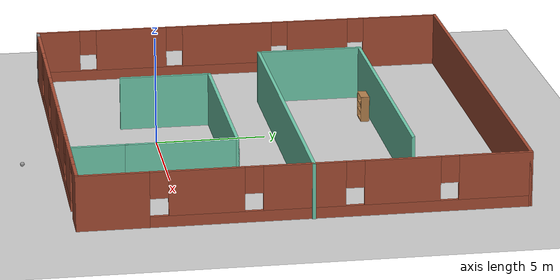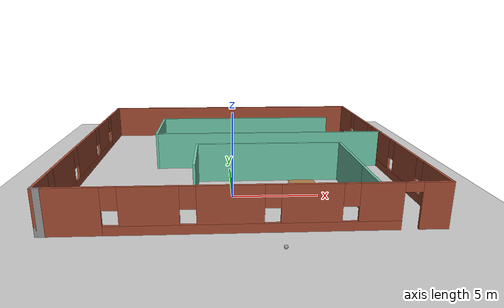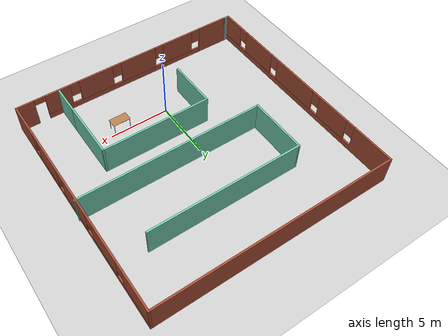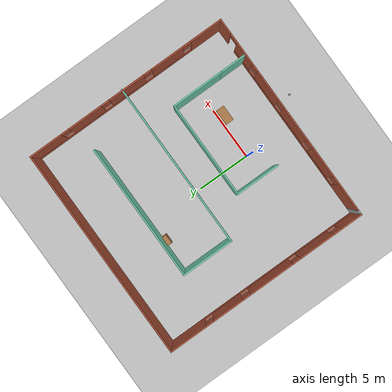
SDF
<sdf version="1.6">
 <world name="default">
  <plugin name="hello" filename="libhello.so"/>
  <light name="sun" type="directional">
   <pose>0 0 10 0 -0 0</pose>
   <diffuse>0.8 0.8 0.8 1</diffuse>
   <specular>0.2 0.2 0.2 1</specular>
   <attenuation>
    <range>1000</range>
    <constant>0.9</constant>
    <linear>0.01</linear>
    <quadratic>0.001</quadratic>
   </attenuation>
   <direction>-0.5 0.1 -0.9</direction>
  </light>
  <model name="ground_plane">
   <static>1</static>
   <link name="link">
    <collision name="collision">
     <geometry><plane><normal>0 0 1</normal><size>100 100</size></plane></geometry>
     <surface><friction><ode><mu>100</mu><mu2>50</mu2></ode></friction></surface>
    </collision>
    <visual name="visual">
     <cast_shadows>0</cast_shadows>
     <geometry><plane><normal>0 0 1</normal><size>100 100</size></plane></geometry>
     <material>
      <script><uri>file://media/materials/scripts/gazebo.material</uri><name>Gazebo/Grey</name></script>
     </material>
    </visual>
   </link>
  </model>
  <gravity>0 0 -9.8</gravity>
  <magnetic_field>6e-06 2.3e-05 -4.2e-05</magnetic_field>
  <atmosphere type="adiabatic"/>
  <physics name="default_physics" default="0" type="ode">
   <max_step_size>0.001</max_step_size>
   <real_time_factor>1</real_time_factor>
   <real_time_update_rate>1000</real_time_update_rate>
  </physics>
  <scene><ambient>0.4 0.4 0.4 1</ambient><background>0.7 0.7 0.7 1</background><shadows>1</shadows></scene>
  <spherical_coordinates>
   <surface_model>EARTH_WGS84</surface_model>
   <latitude_deg>0</latitude_deg>
   <longitude_deg>0</longitude_deg>
   <elevation>0</elevation>
   <heading_deg>0</heading_deg>
  </spherical_coordinates>
  <model name="building_maze">
   <pose>0.51507 5.19536 0 0 -0 0</pose>
   <link name="Wall_0">
    <pose>0.212168 -9.8 0 0 -0 0</pose>
    <visual name="Wall_0_Visual_0">
     <pose>-8.51428 0 1.25 0 -0 0</pose>
     <geometry><box><size>2.72143 0.15 2.5</size></box></geometry>
     <material>
      <script><uri>file://media/materials/scripts/gazebo.material</uri><name>Gazebo/Bricks</name></script>
      <ambient>1 1 1 1</ambient>
     </material>
     <meta><layer>0</layer></meta>
    </visual>
    <collision name="Wall_0_Collision_0">
     <geometry><box><size>2.72143 0.15 2.5</size></box></geometry>
     <pose>-8.51428 0 1.25 0 -0 0</pose>
    </collision>
    <visual name="Wall_0_Visual_1">
     <pose>9.11153 0 1.25 0 -0 0</pose>
     <geometry><box><size>1.52695 0.15 2.5</size></box></geometry>
     <material>
      <script><uri>file://media/materials/scripts/gazebo.material</uri><name>Gazebo/Bricks</name></script>
      <ambient>1 1 1 1</ambient>
     </material>
     <meta><layer>0</layer></meta>
    </visual>
    <collision name="Wall_0_Collision_1">
     <geometry><box><size>1.52695 0.15 2.5</size></box></geometry>
     <pose>9.11153 0 1.25 0 -0 0</pose>
    </collision>
    <visual name="Wall_0_Visual_2">
     <pose>0.147241 0 0.25 0 -0 0</pose>
     <geometry><box><size>14.6016 0.15 0.5</size></box></geometry>
     <material>
      <script><uri>file://media/materials/scripts/gazebo.material</uri><name>Gazebo/Bricks</name></script>
      <ambient>1 1 1 1</ambient>
     </material>
     <meta><layer>0</layer></meta>
    </visual>
    <collision name="Wall_0_Collision_2">
     <geometry><box><size>14.6016 0.15 0.5</size></box></geometry>
     <pose>0.147241 0 0.25 0 -0 0</pose>
    </collision>
    <visual name="Wall_0_Visual_3">
     <pose>-4.89432 0 1.5 0 -0 0</pose>
     <geometry><box><size>2.9185 0.15 2</size></box></geometry>
     <material>
      <script><uri>file://media/materials/scripts/gazebo.material</uri><name>Gazebo/Bricks</name></script>
      <ambient>1 1 1 1</ambient>
     </material>
     <meta><layer>0</layer></meta>
    </visual>
    <collision name="Wall_0_Collision_3">
     <geometry><box><size>2.9185 0.15 2</size></box></geometry>
     <pose>-4.89432 0 1.5 0 -0 0</pose>
    </collision>
    <visual name="Wall_0_Visual_4">
     <pose>-0.988017 0 1.5 0 -0 0</pose>
     <geometry><box><size>3.29411 0.15 2</size></box></geometry>
     <material>
      <script><uri>file://media/materials/scripts/gazebo.material</uri><name>Gazebo/Bricks</name></script>
      <ambient>1 1 1 1</ambient>
     </material>
     <meta><layer>0</layer></meta>
    </visual>
    <collision name="Wall_0_Collision_4">
     <geometry><box><size>3.29411 0.15 2</size></box></geometry>
     <pose>-0.988017 0 1.5 0 -0 0</pose>
    </collision>
    <visual name="Wall_0_Visual_5">
     <pose>2.96651 0 1.5 0 -0 0</pose>
     <geometry><box><size>3.01496 0.15 2</size></box></geometry>
     <material>
      <script><uri>file://media/materials/scripts/gazebo.material</uri><name>Gazebo/Bricks</name></script>
      <ambient>1 1 1 1</ambient>
     </material>
     <meta><layer>0</layer></meta>
    </visual>
    <collision name="Wall_0_Collision_5">
     <geometry><box><size>3.01496 0.15 2</size></box></geometry>
     <pose>2.96651 0 1.5 0 -0 0</pose>
    </collision>
    <visual name="Wall_0_Visual_6">
     <pose>6.36102 0 1.5 0 -0 0</pose>
     <geometry><box><size>2.17406 0.15 2</size></box></geometry>
     <material>
      <script><uri>file://media/materials/scripts/gazebo.material</uri><name>Gazebo/Bricks</name></script>
      <ambient>1 1 1 1</ambient>
     </material>
     <meta><layer>0</layer></meta>
    </visual>
    <collision name="Wall_0_Collision_6">
     <geometry><box><size>2.17406 0.15 2</size></box></geometry>
     <pose>6.36102 0 1.5 0 -0 0</pose>
    </collision>
    <visual name="Wall_0_Visual_7">
     <pose>-6.75357 0 1.9 0 -0 0</pose>
     <geometry><box><size>0.8 0.15 1.2</size></box></geometry>
     <material>
      <script><uri>file://media/materials/scripts/gazebo.material</uri><name>Gazebo/Bricks</name></script>
      <ambient>1 1 1 1</ambient>
     </material>
     <meta><layer>0</layer></meta>
    </visual>
    <collision name="Wall_0_Collision_7">
     <geometry><box><size>0.8 0.15 1.2</size></box></geometry>
     <pose>-6.75357 0 1.9 0 -0 0</pose>
    </collision>
    <visual name="Wall_0_Visual_8">
     <pose>-3.03507 0 1.9 0 -0 0</pose>
     <geometry><box><size>0.8 0.15 1.2</size></box></geometry>
     <material>
      <script><uri>file://media/materials/scripts/gazebo.material</uri><name>Gazebo/Bricks</name></script>
      <ambient>1 1 1 1</ambient>
     </material>
     <meta><layer>0</layer></meta>
    </visual>
    <collision name="Wall_0_Collision_8">
     <geometry><box><size>0.8 0.15 1.2</size></box></geometry>
     <pose>-3.03507 0 1.9 0 -0 0</pose>
    </collision>
    <visual name="Wall_0_Visual_9">
     <pose>1.05903 0 1.9 0 -0 0</pose>
     <geometry><box><size>0.8 0.15 1.2</size></box></geometry>
     <material>
      <script><uri>file://media/materials/scripts/gazebo.material</uri><name>Gazebo/Bricks</name></script>
      <ambient>1 1 1 1</ambient>
     </material>
     <meta><layer>0</layer></meta>
    </visual>
    <collision name="Wall_0_Collision_9">
     <geometry><box><size>0.8 0.15 1.2</size></box></geometry>
     <pose>1.05903 0 1.9 0 -0 0</pose>
    </collision>
    <visual name="Wall_0_Visual_10">
     <pose>4.87399 0 1.9 0 -0 0</pose>
     <geometry><box><size>0.8 0.15 1.2</size></box></geometry>
     <material>
      <script><uri>file://media/materials/scripts/gazebo.material</uri><name>Gazebo/Bricks</name></script>
      <ambient>1 1 1 1</ambient>
     </material>
     <meta><layer>0</layer></meta>
    </visual>
    <collision name="Wall_0_Collision_10">
     <geometry><box><size>0.8 0.15 1.2</size></box></geometry>
     <pose>4.87399 0 1.9 0 -0 0</pose>
    </collision>
    <visual name="Wall_0_Visual_11">
     <pose>7.89805 0 2.25 0 -0 0</pose>
     <geometry><box><size>0.9 0.15 0.5</size></box></geometry>
     <material>
      <script><uri>file://media/materials/scripts/gazebo.material</uri><name>Gazebo/Bricks</name></script>
      <ambient>1 1 1 1</ambient>
     </material>
     <meta><layer>0</layer></meta>
    </visual>
    <collision name="Wall_0_Collision_11">
     <geometry><box><size>0.9 0.15 0.5</size></box></geometry>
     <pose>7.89805 0 2.25 0 -0 0</pose>
    </collision>
   </link>
   <link name="Wall_1">
    <pose>10.0122 0 0 0 -0 1.5708</pose>
    <visual name="Wall_1_Visual_0">
     <pose>-8.29649 0 1.25 0 -0 0</pose>
     <geometry><box><size>3.15701 0.15 2.5</size></box></geometry>
     <material>
      <script><uri>file://media/materials/scripts/gazebo.material</uri><name>Gazebo/Bricks</name></script>
      <ambient>1 1 1 1</ambient>
     </material>
     <meta><layer>0</layer></meta>
    </visual>
    <collision name="Wall_1_Collision_0">
     <geometry><box><size>3.15701 0.15 2.5</size></box></geometry>
     <pose>-8.29649 0 1.25 0 -0 0</pose>
    </collision>
    <visual name="Wall_1_Visual_1">
     <pose>1.57851 0 0.25 0 -0 0</pose>
     <geometry><box><size>16.593 0.15 0.5</size></box></geometry>
     <material>
      <script><uri>file://media/materials/scripts/gazebo.material</uri><name>Gazebo/Bricks</name></script>
      <ambient>1 1 1 1</ambient>
     </material>
     <meta><layer>0</layer></meta>
    </visual>
    <collision name="Wall_1_Collision_1">
     <geometry><box><size>16.593 0.15 0.5</size></box></geometry>
     <pose>1.57851 0 0.25 0 -0 0</pose>
    </collision>
    <visual name="Wall_1_Visual_2">
     <pose>-4.28757 0 1.5 0 -0 0</pose>
     <geometry><box><size>3.26084 0.15 2</size></box></geometry>
     <material>
      <script><uri>file://media/materials/scripts/gazebo.material</uri><name>Gazebo/Bricks</name></script>
      <ambient>1 1 1 1</ambient>
     </material>
     <meta><layer>0</layer></meta>
    </visual>
    <collision name="Wall_1_Collision_2">
     <geometry><box><size>3.26084 0.15 2</size></box></geometry>
     <pose>-4.28757 0 1.5 0 -0 0</pose>
    </collision>
    <visual name="Wall_1_Visual_3">
     <pose>-0.072906 0 1.5 0 -0 0</pose>
     <geometry><box><size>3.56848 0.15 2</size></box></geometry>
     <material>
      <script><uri>file://media/materials/scripts/gazebo.material</uri><name>Gazebo/Bricks</name></script>
      <ambient>1 1 1 1</ambient>
     </material>
     <meta><layer>0</layer></meta>
    </visual>
    <collision name="Wall_1_Collision_3">
     <geometry><box><size>3.56848 0.15 2</size></box></geometry>
     <pose>-0.072906 0 1.5 0 -0 0</pose>
    </collision>
    <visual name="Wall_1_Visual_4">
     <pose>4.17252 0 1.5 0 -0 0</pose>
     <geometry><box><size>3.32237 0.15 2</size></box></geometry>
     <material>
      <script><uri>file://media/materials/scripts/gazebo.material</uri><name>Gazebo/Bricks</name></script>
      <ambient>1 1 1 1</ambient>
     </material>
     <meta><layer>0</layer></meta>
    </visual>
    <collision name="Wall_1_Collision_4">
     <geometry><box><size>3.32237 0.15 2</size></box></geometry>
     <pose>4.17252 0 1.5 0 -0 0</pose>
    </collision>
    <visual name="Wall_1_Visual_5">
     <pose>8.25435 0 1.5 0 -0 0</pose>
     <geometry><box><size>3.2413 0.15 2</size></box></geometry>
     <material>
      <script><uri>file://media/materials/scripts/gazebo.material</uri><name>Gazebo/Bricks</name></script>
      <ambient>1 1 1 1</ambient>
     </material>
     <meta><layer>0</layer></meta>
    </visual>
    <collision name="Wall_1_Collision_5">
     <geometry><box><size>3.2413 0.15 2</size></box></geometry>
     <pose>8.25435 0 1.5 0 -0 0</pose>
    </collision>
    <visual name="Wall_1_Visual_6">
     <pose>-6.31799 0 1.9 0 -0 0</pose>
     <geometry><box><size>0.8 0.15 1.2</size></box></geometry>
     <material>
      <script><uri>file://media/materials/scripts/gazebo.material</uri><name>Gazebo/Bricks</name></script>
      <ambient>1 1 1 1</ambient>
     </material>
     <meta><layer>0</layer></meta>
    </visual>
    <collision name="Wall_1_Collision_6">
     <geometry><box><size>0.8 0.15 1.2</size></box></geometry>
     <pose>-6.31799 0 1.9 0 -0 0</pose>
    </collision>
    <visual name="Wall_1_Visual_7">
     <pose>-2.25715 0 1.9 0 -0 0</pose>
     <geometry><box><size>0.8 0.15 1.2</size></box></geometry>
     <material>
      <script><uri>file://media/materials/scripts/gazebo.material</uri><name>Gazebo/Bricks</name></script>
      <ambient>1 1 1 1</ambient>
     </material>
     <meta><layer>0</layer></meta>
    </visual>
    <collision name="Wall_1_Collision_7">
     <geometry><box><size>0.8 0.15 1.2</size></box></geometry>
     <pose>-2.25715 0 1.9 0 -0 0</pose>
    </collision>
    <visual name="Wall_1_Visual_8">
     <pose>2.11133 0 1.9 0 -0 0</pose>
     <geometry><box><size>0.8 0.15 1.2</size></box></geometry>
     <material>
      <script><uri>file://media/materials/scripts/gazebo.material</uri><name>Gazebo/Bricks</name></script>
      <ambient>1 1 1 1</ambient>
     </material>
     <meta><layer>0</layer></meta>
    </visual>
    <collision name="Wall_1_Collision_8">
     <geometry><box><size>0.8 0.15 1.2</size></box></geometry>
     <pose>2.11133 0 1.9 0 -0 0</pose>
    </collision>
    <visual name="Wall_1_Visual_9">
     <pose>6.2337 0 1.9 0 -0 0</pose>
     <geometry><box><size>0.8 0.15 1.2</size></box></geometry>
     <material>
      <script><uri>file://media/materials/scripts/gazebo.material</uri><name>Gazebo/Bricks</name></script>
      <ambient>1 1 1 1</ambient>
     </material>
     <meta><layer>0</layer></meta>
    </visual>
    <collision name="Wall_1_Collision_9">
     <geometry><box><size>0.8 0.15 1.2</size></box></geometry>
     <pose>6.2337 0 1.9 0 -0 0</pose>
    </collision>
   </link>
   <link name="Wall_10">
    <collision name="Wall_10_Collision">
     <geometry><box><size>4.25 0.15 2.5</size></box></geometry>
     <pose>0 0 1.25 0 -0 0</pose>
    </collision>
    <visual name="Wall_10_Visual">
     <pose>0 0 1.25 0 -0 0</pose>
     <geometry><box><size>4.25 0.15 2.5</size></box></geometry>
     <material>
      <script><uri>file://media/materials/scripts/gazebo.material</uri><name>Gazebo/Grey</name></script>
      <ambient>0.435294 0.796078 0.67451 1</ambient>
     </material>
     <meta><layer>0</layer></meta>
    </visual>
    <pose>-2.65619 -4.49974 0 0 0 -1.5708</pose>
   </link>
   <link name="Wall_12">
    <collision name="Wall_12_Collision">
     <geometry><box><size>15.75 0.15 2.5</size></box></geometry>
     <pose>0 0 1.25 0 -0 0</pose>
    </collision>
    <visual name="Wall_12_Visual">
     <pose>0 0 1.25 0 -0 0</pose>
     <geometry><box><size>15.75 0.15 2.5</size></box></geometry>
     <material>
      <script><uri>file://media/materials/scripts/gazebo.material</uri><name>Gazebo/Grey</name></script>
      <ambient>0.435294 0.796078 0.67451 1</ambient>
     </material>
     <meta><layer>0</layer></meta>
    </visual>
    <pose>2.28783 0.317498 0 0 -0 3.14159</pose>
   </link>
   <link name="Wall_13">
    <collision name="Wall_13_Collision">
     <geometry><box><size>5 0.15 2.5</size></box></geometry>
     <pose>0 0 1.25 0 -0 0</pose>
    </collision>
    <visual name="Wall_13_Visual">
     <pose>0 0 1.25 0 -0 0</pose>
     <geometry><box><size>5 0.15 2.5</size></box></geometry>
     <material>
      <script><uri>file://media/materials/scripts/gazebo.material</uri><name>Gazebo/Grey</name></script>
      <ambient>0.435294 0.796078 0.67451 1</ambient>
     </material>
     <meta><layer>0</layer></meta>
    </visual>
    <pose>-5.51217 2.7425 0 0 -0 1.5708</pose>
   </link>
   <link name="Wall_14">
    <collision name="Wall_14_Collision">
     <geometry><box><size>13 0.15 2.5</size></box></geometry>
     <pose>0 0 1.25 0 -0 0</pose>
    </collision>
    <visual name="Wall_14_Visual">
     <pose>0 0 1.25 0 -0 0</pose>
     <geometry><box><size>13 0.15 2.5</size></box></geometry>
     <material>
      <script><uri>file://media/materials/scripts/gazebo.material</uri><name>Gazebo/Grey</name></script>
      <ambient>0.435294 0.796078 0.67451 1</ambient>
     </material>
     <meta><layer>0</layer></meta>
    </visual>
    <pose>0.912833 5.1675 0 0 -0 0</pose>
   </link>
   <link name="Wall_2">
    <collision name="Wall_2_Collision">
     <geometry><box><size>20.25 0.15 2.5</size></box></geometry>
     <pose>0 0 1.25 0 -0 0</pose>
    </collision>
    <visual name="Wall_2_Visual">
     <pose>0 0 1.25 0 -0 0</pose>
     <geometry><box><size>20.25 0.15 2.5</size></box></geometry>
     <material>
      <script><uri>file://media/materials/scripts/gazebo.material</uri><name>Gazebo/Bricks</name></script>
      <ambient>1 1 1 1</ambient>
     </material>
     <meta><layer>0</layer></meta>
    </visual>
    <pose>-0.037832 9.8 0 0 -0 3.14159</pose>
   </link>
   <link name="Wall_3">
    <pose>-10.0878 0 0 0 0 -1.5708</pose>
    <visual name="Wall_3_Visual_0">
     <pose>-8.039 0 1.25 0 -0 0</pose>
     <geometry><box><size>3.67199 0.15 2.5</size></box></geometry>
     <material>
      <script><uri>file://media/materials/scripts/gazebo.material</uri><name>Gazebo/Bricks</name></script>
      <ambient>1 1 1 1</ambient>
     </material>
     <meta><layer>0</layer></meta>
    </visual>
    <collision name="Wall_3_Collision_0">
     <geometry><box><size>3.67199 0.15 2.5</size></box></geometry>
     <pose>-8.039 0 1.25 0 -0 0</pose>
    </collision>
    <visual name="Wall_3_Visual_1">
     <pose>1.836 0 0.25 0 -0 0</pose>
     <geometry><box><size>16.078 0.15 0.5</size></box></geometry>
     <material>
      <script><uri>file://media/materials/scripts/gazebo.material</uri><name>Gazebo/Bricks</name></script>
      <ambient>1 1 1 1</ambient>
     </material>
     <meta><layer>0</layer></meta>
    </visual>
    <collision name="Wall_3_Collision_1">
     <geometry><box><size>16.078 0.15 0.5</size></box></geometry>
     <pose>1.836 0 0.25 0 -0 0</pose>
    </collision>
    <visual name="Wall_3_Visual_2">
     <pose>-3.90601 0 1.5 0 -0 0</pose>
     <geometry><box><size>2.99399 0.15 2</size></box></geometry>
     <material>
      <script><uri>file://media/materials/scripts/gazebo.material</uri><name>Gazebo/Bricks</name></script>
      <ambient>1 1 1 1</ambient>
     </material>
     <meta><layer>0</layer></meta>
    </visual>
    <collision name="Wall_3_Collision_2">
     <geometry><box><size>2.99399 0.15 2</size></box></geometry>
     <pose>-3.90601 0 1.5 0 -0 0</pose>
    </collision>
    <visual name="Wall_3_Visual_3">
     <pose>0.57926 0 1.5 0 -0 0</pose>
     <geometry><box><size>4.37655 0.15 2</size></box></geometry>
     <material>
      <script><uri>file://media/materials/scripts/gazebo.material</uri><name>Gazebo/Bricks</name></script>
      <ambient>1 1 1 1</ambient>
     </material>
     <meta><layer>0</layer></meta>
    </visual>
    <collision name="Wall_3_Collision_3">
     <geometry><box><size>4.37655 0.15 2</size></box></geometry>
     <pose>0.57926 0 1.5 0 -0 0</pose>
    </collision>
    <visual name="Wall_3_Visual_4">
     <pose>5.27703 0 1.5 0 -0 0</pose>
     <geometry><box><size>3.419 0.15 2</size></box></geometry>
     <material>
      <script><uri>file://media/materials/scripts/gazebo.material</uri><name>Gazebo/Bricks</name></script>
      <ambient>1 1 1 1</ambient>
     </material>
     <meta><layer>0</layer></meta>
    </visual>
    <collision name="Wall_3_Collision_4">
     <geometry><box><size>3.419 0.15 2</size></box></geometry>
     <pose>5.27703 0 1.5 0 -0 0</pose>
    </collision>
    <visual name="Wall_3_Visual_5">
     <pose>8.83077 0 1.5 0 -0 0</pose>
     <geometry><box><size>2.08847 0.15 2</size></box></geometry>
     <material>
      <script><uri>file://media/materials/scripts/gazebo.material</uri><name>Gazebo/Bricks</name></script>
      <ambient>1 1 1 1</ambient>
     </material>
     <meta><layer>0</layer></meta>
    </visual>
    <collision name="Wall_3_Collision_5">
     <geometry><box><size>2.08847 0.15 2</size></box></geometry>
     <pose>8.83077 0 1.5 0 -0 0</pose>
    </collision>
    <visual name="Wall_3_Visual_6">
     <pose>-5.80301 0 1.9 0 -0 0</pose>
     <geometry><box><size>0.8 0.15 1.2</size></box></geometry>
     <material>
      <script><uri>file://media/materials/scripts/gazebo.material</uri><name>Gazebo/Bricks</name></script>
      <ambient>1 1 1 1</ambient>
     </material>
     <meta><layer>0</layer></meta>
    </visual>
    <collision name="Wall_3_Collision_6">
     <geometry><box><size>0.8 0.15 1.2</size></box></geometry>
     <pose>-5.80301 0 1.9 0 -0 0</pose>
    </collision>
    <visual name="Wall_3_Visual_7">
     <pose>-2.00902 0 1.9 0 -0 0</pose>
     <geometry><box><size>0.8 0.15 1.2</size></box></geometry>
     <material>
      <script><uri>file://media/materials/scripts/gazebo.material</uri><name>Gazebo/Bricks</name></script>
      <ambient>1 1 1 1</ambient>
     </material>
     <meta><layer>0</layer></meta>
    </visual>
    <collision name="Wall_3_Collision_7">
     <geometry><box><size>0.8 0.15 1.2</size></box></geometry>
     <pose>-2.00902 0 1.9 0 -0 0</pose>
    </collision>
    <visual name="Wall_3_Visual_8">
     <pose>3.16754 0 1.9 0 -0 0</pose>
     <geometry><box><size>0.8 0.15 1.2</size></box></geometry>
     <material>
      <script><uri>file://media/materials/scripts/gazebo.material</uri><name>Gazebo/Bricks</name></script>
      <ambient>1 1 1 1</ambient>
     </material>
     <meta><layer>0</layer></meta>
    </visual>
    <collision name="Wall_3_Collision_8">
     <geometry><box><size>0.8 0.15 1.2</size></box></geometry>
     <pose>3.16754 0 1.9 0 -0 0</pose>
    </collision>
    <visual name="Wall_3_Visual_9">
     <pose>7.38653 0 1.9 0 -0 0</pose>
     <geometry><box><size>0.8 0.15 1.2</size></box></geometry>
     <material>
      <script><uri>file://media/materials/scripts/gazebo.material</uri><name>Gazebo/Bricks</name></script>
      <ambient>1 1 1 1</ambient>
     </material>
     <meta><layer>0</layer></meta>
    </visual>
    <collision name="Wall_3_Collision_9">
     <geometry><box><size>0.8 0.15 1.2</size></box></geometry>
     <pose>7.38653 0 1.9 0 -0 0</pose>
    </collision>
   </link>
   <link name="Wall_4">
    <collision name="Wall_4_Collision">
     <geometry><box><size>0.65 0.15 2.5</size></box></geometry>
     <pose>0 0 1.25 0 -0 0</pose>
    </collision>
    <visual name="Wall_4_Visual">
     <pose>0 0 1.25 0 -0 0</pose>
     <geometry><box><size>0.65 0.15 2.5</size></box></geometry>
     <material>
      <script><uri>file://media/materials/scripts/gazebo.material</uri><name>Gazebo/Grey</name></script>
      <ambient>1 1 1 1</ambient>
     </material>
     <meta><layer>0</layer></meta>
    </visual>
    <pose>-9.83783 -9.8 0 0 -0 0</pose>
   </link>
   <link name="Wall_6">
    <collision name="Wall_6_Collision">
     <geometry><box><size>2.5 0.15 2.5</size></box></geometry>
     <pose>0 0 1.25 0 -0 0</pose>
    </collision>
    <visual name="Wall_6_Visual">
     <pose>0 0 1.25 0 -0 0</pose>
     <geometry><box><size>2.5 0.15 2.5</size></box></geometry>
     <material>
      <script><uri>file://media/materials/scripts/gazebo.material</uri><name>Gazebo/Grey</name></script>
      <ambient>0.435294 0.796078 0.67451 1</ambient>
     </material>
     <meta><layer>0</layer></meta>
    </visual>
    <pose>6.44381 -8.47474 0 0 0 -1.5708</pose>
   </link>
   <link name="Wall_8">
    <collision name="Wall_8_Collision">
     <geometry><box><size>5 0.15 2.5</size></box></geometry>
     <pose>0 0 1.25 0 -0 0</pose>
    </collision>
    <visual name="Wall_8_Visual">
     <pose>0 0 1.25 0 -0 0</pose>
     <geometry><box><size>5 0.15 2.5</size></box></geometry>
     <material>
      <script><uri>file://media/materials/scripts/gazebo.material</uri><name>Gazebo/Grey</name></script>
      <ambient>0.435294 0.796078 0.67451 1</ambient>
     </material>
     <meta><layer>0</layer></meta>
    </visual>
    <pose>6.44381 -4.87474 0 0 -0 1.5708</pose>
   </link>
   <link name="Wall_9">
    <collision name="Wall_9_Collision">
     <geometry><box><size>9.25 0.15 2.5</size></box></geometry>
     <pose>0 0 1.25 0 -0 0</pose>
    </collision>
    <visual name="Wall_9_Visual">
     <pose>0 0 1.25 0 -0 0</pose>
     <geometry><box><size>9.25 0.15 2.5</size></box></geometry>
     <material>
      <script><uri>file://media/materials/scripts/gazebo.material</uri><name>Gazebo/Grey</name></script>
      <ambient>0.435294 0.796078 0.67451 1</ambient>
     </material>
     <meta><layer>0</layer></meta>
    </visual>
    <pose>1.89381 -2.44974 0 0 -0 3.14159</pose>
   </link>
   <static>1</static>
  </model>
  <model name="bookshelf">
   <static>1</static>
   <link name="link">
    <inertial><mass>1</mass></inertial>
    <collision name="back">
     <pose>0 0.005 0.6 0 -0 0</pose>
     <geometry><box><size>0.9 0.01 1.2</size></box></geometry>
    </collision>
    <visual name="visual1">
     <pose>0 0.005 0.6 0 -0 0</pose>
     <geometry><box><size>0.9 0.01 1.2</size></box></geometry>
     <material>
      <script><uri>file://media/materials/scripts/gazebo.material</uri><name>Gazebo/Wood</name></script>
     </material>
    </visual>
    <collision name="left_side">
     <pose>0.45 -0.195 0.6 0 -0 0</pose>
     <geometry><box><size>0.02 0.4 1.2</size></box></geometry>
    </collision>
    <visual name="visual2">
     <pose>0.45 -0.195 0.6 0 -0 0</pose>
     <geometry><box><size>0.02 0.4 1.2</size></box></geometry>
     <material>
      <script><uri>file://media/materials/scripts/gazebo.material</uri><name>Gazebo/Wood</name></script>
     </material>
    </visual>
    <collision name="right_side">
     <pose>-0.45 -0.195 0.6 0 -0 0</pose>
     <geometry><box><size>0.02 0.4 1.2</size></box></geometry>
    </collision>
    <visual name="visual3">
     <pose>-0.45 -0.195 0.6 0 -0 0</pose>
     <geometry><box><size>0.02 0.4 1.2</size></box></geometry>
     <material>
      <script><uri>file://media/materials/scripts/gazebo.material</uri><name>Gazebo/Wood</name></script>
     </material>
    </visual>
    <collision name="bottom">
     <pose>0 -0.195 0.03 0 -0 0</pose>
     <geometry><box><size>0.88 0.4 0.06</size></box></geometry>
    </collision>
    <visual name="visual4">
     <pose>0 -0.195 0.03 0 -0 0</pose>
     <geometry><box><size>0.88 0.4 0.06</size></box></geometry>
     <material>
      <script><uri>file://media/materials/scripts/gazebo.material</uri><name>Gazebo/Wood</name></script>
     </material>
    </visual>
    <collision name="top">
     <pose>0 -0.195 1.19 0 -0 0</pose>
     <geometry><box><size>0.88 0.4 0.02</size></box></geometry>
    </collision>
    <visual name="visual5">
     <pose>0 -0.195 1.19 0 -0 0</pose>
     <geometry><box><size>0.88 0.4 0.02</size></box></geometry>
     <material>
      <script><uri>file://media/materials/scripts/gazebo.material</uri><name>Gazebo/Wood</name></script>
     </material>
    </visual>
    <collision name="low_shelf">
     <pose>0 -0.195 0.43 0 -0 0</pose>
     <geometry><box><size>0.88 0.4 0.02</size></box></geometry>
    </collision>
    <visual name="visual6">
     <pose>0 -0.195 0.43 0 -0 0</pose>
     <geometry><box><size>0.88 0.4 0.02</size></box></geometry>
     <material>
      <script><uri>file://media/materials/scripts/gazebo.material</uri><name>Gazebo/Wood</name></script>
     </material>
    </visual>
    <collision name="high_shelf">
     <pose>0 -0.195 0.8 0 -0 0</pose>
     <geometry><box><size>0.88 0.4 0.02</size></box></geometry>
    </collision>
    <visual name="visual7">
     <pose>0 -0.195 0.8 0 -0 0</pose>
     <geometry><box><size>0.88 0.4 0.02</size></box></geometry>
     <material>
      <script><uri>file://media/materials/scripts/gazebo.material</uri><name>Gazebo/Wood</name></script>
     </material>
    </visual>
   </link>
   <pose>-1.8695 10.1874 0 0 -0 0</pose>
  </model>
  <model name="table">
   <static>1</static>
   <link name="link">
    <collision name="surface">
     <pose>0 0 1 0 -0 0</pose>
     <geometry><box><size>1.5 0.8 0.03</size></box></geometry>
     <surface><friction><ode><mu>0.6</mu><mu2>0.6</mu2></ode></friction></surface>
    </collision>
    <visual name="visual1">
     <pose>0 0 1 0 -0 0</pose>
     <geometry><box><size>1.5 0.8 0.03</size></box></geometry>
     <material>
      <script><uri>file://media/materials/scripts/gazebo.material</uri><name>Gazebo/Wood</name></script>
     </material>
    </visual>
    <collision name="front_left_leg">
     <pose>0.68 0.38 0.5 0 -0 0</pose>
     <geometry><cylinder><radius>0.02</radius><length>1</length></cylinder></geometry>
    </collision>
    <visual name="front_left_leg">
     <pose>0.68 0.38 0.5 0 -0 0</pose>
     <geometry><cylinder><radius>0.02</radius><length>1</length></cylinder></geometry>
     <material>
      <script><uri>file://media/materials/scripts/gazebo.material</uri><name>Gazebo/Grey</name></script>
     </material>
    </visual>
    <collision name="front_right_leg">
     <pose>0.68 -0.38 0.5 0 -0 0</pose>
     <geometry><cylinder><radius>0.02</radius><length>1</length></cylinder></geometry>
    </collision>
    <visual name="front_right_leg">
     <pose>0.68 -0.38 0.5 0 -0 0</pose>
     <geometry><cylinder><radius>0.02</radius><length>1</length></cylinder></geometry>
     <material>
      <script><uri>file://media/materials/scripts/gazebo.material</uri><name>Gazebo/Grey</name></script>
     </material>
    </visual>
    <collision name="back_right_leg">
     <pose>-0.68 -0.38 0.5 0 -0 0</pose>
     <geometry><cylinder><radius>0.02</radius><length>1</length></cylinder></geometry>
    </collision>
    <visual name="back_right_leg">
     <pose>-0.68 -0.38 0.5 0 -0 0</pose>
     <geometry><cylinder><radius>0.02</radius><length>1</length></cylinder></geometry>
     <material>
      <script><uri>file://media/materials/scripts/gazebo.material</uri><name>Gazebo/Grey</name></script>
     </material>
    </visual>
    <collision name="back_left_leg">
     <pose>-0.68 0.38 0.5 0 -0 0</pose>
     <geometry><cylinder><radius>0.02</radius><length>1</length></cylinder></geometry>
    </collision>
    <visual name="back_left_leg">
     <pose>-0.68 0.38 0.5 0 -0 0</pose>
     <geometry><cylinder><radius>0.02</radius><length>1</length></cylinder></geometry>
     <material>
      <script><uri>file://media/materials/scripts/gazebo.material</uri><name>Gazebo/Grey</name></script>
     </material>
    </visual>
   </link>
   <pose>3.97821 -0.439081 0 0 -0 0</pose>
  </model>
  <model name="my_ball">
   <link name="link_0">
    <inertial>
     <mass>1</mass>
     <inertia><ixx>0.1</ixx><ixy>0</ixy><ixz>0</ixz><iyy>0.1</iyy><iyz>0</iyz><izz>0.1</izz></inertia>
    </inertial>
    <visual name="visual">
     <geometry><sphere><radius>0.1</radius></sphere></geometry>
     <material>
      <lighting>1</lighting>
      <script><uri>file://media/materials/scripts/gazebo.material</uri><name>Gazebo/Grey</name></script>
      <shader type="pixel"><normal_map>__default__</normal_map></shader>
      <ambient>1 1 1 1</ambient>
      <diffuse>1 1 1 1</diffuse>
      <specular>1 1 1 1</specular>
      <emissive>1 1 1 1</emissive>
     </material>
    </visual>
    <collision name="collision">
     <geometry><sphere><radius>0.1</radius></sphere></geometry>
     <surface>
      <friction>
       <ode><mu>1</mu><mu2>1</mu2><fdir1>0 0 0</fdir1><slip1>0</slip1><slip2>0</slip2></ode>
       <torsional>
        <coefficient>1</coefficient>
        <patch_radius>0</patch_radius>
        <surface_radius>0</surface_radius>
        <use_patch_radius>1</use_patch_radius>
        <ode><slip>0</slip></ode>
       </torsional>
      </friction>
      <bounce><restitution_coefficient>0</restitution_coefficient><threshold>1e+06</threshold></bounce>
      <contact>
       <collide_without_contact>0</collide_without_contact>
       <collide_without_contact_bitmask>1</collide_without_contact_bitmask>
       <collide_bitmask>1</collide_bitmask>
       <ode>
        <soft_cfm>0</soft_cfm>
        <soft_erp>0.2</soft_erp>
        <kp>1e+13</kp>
        <kd>1</kd>
        <max_vel>0.01</max_vel>
        <min_depth>0</min_depth>
       </ode>
       <bullet>
        <split_impulse>1</split_impulse>
        <split_impulse_penetration_threshold>-0.01</split_impulse_penetration_threshold>
        <soft_cfm>0</soft_cfm>
        <soft_erp>0.2</soft_erp>
        <kp>1e+13</kp>
        <kd>1</kd>
       </bullet>
      </contact>
     </surface>
    </collision>
   </link>
   <static>0</static>
   <pose>2.19756 -6.3142 0.1 0 -0 0</pose>
  </model>
 </world>
</sdf>
